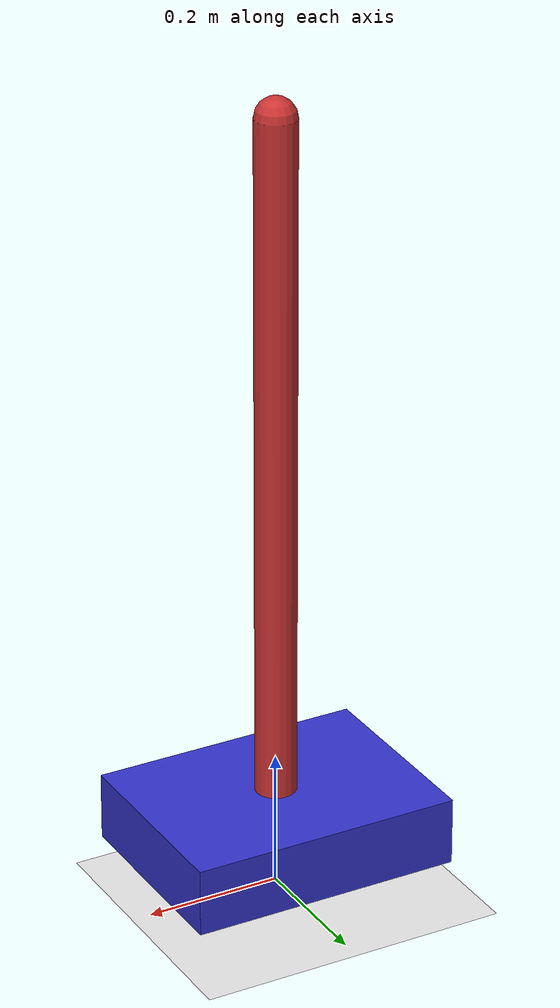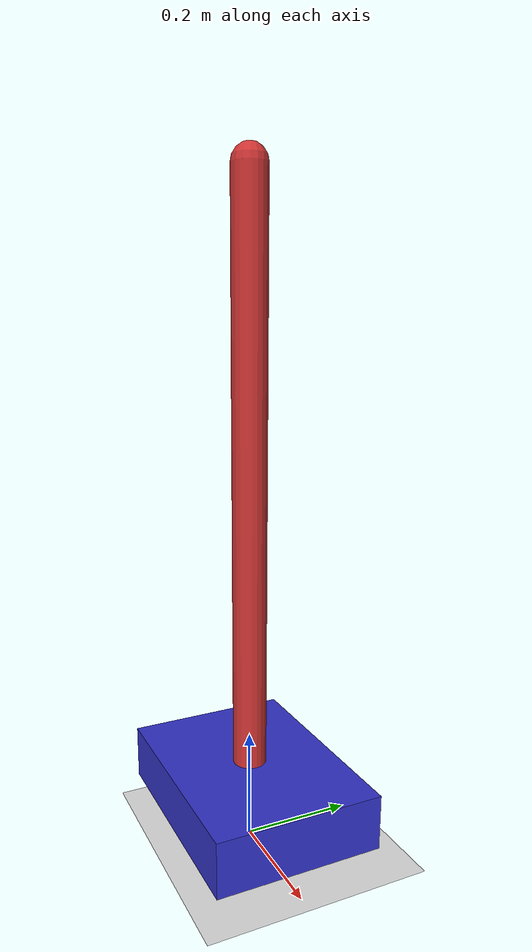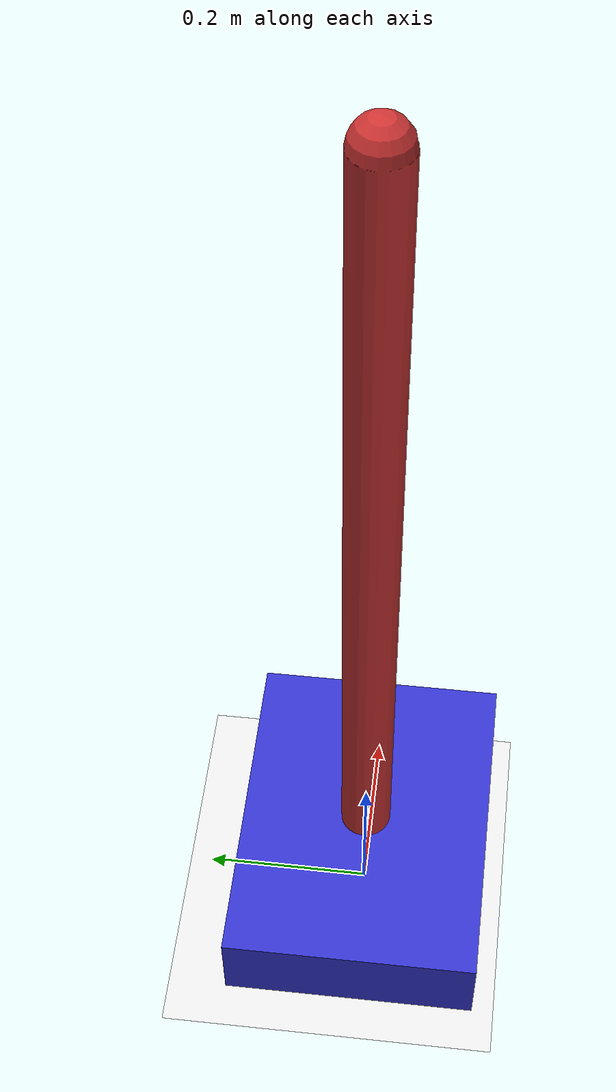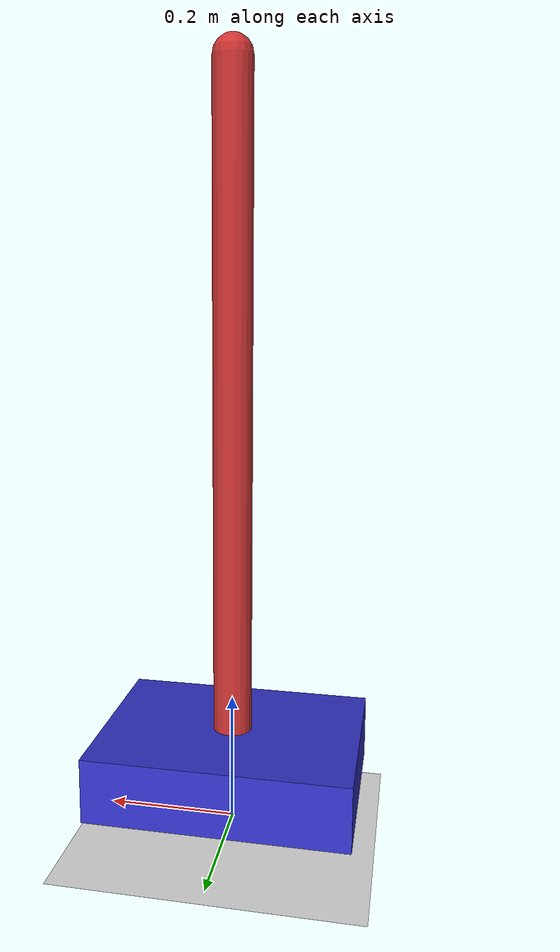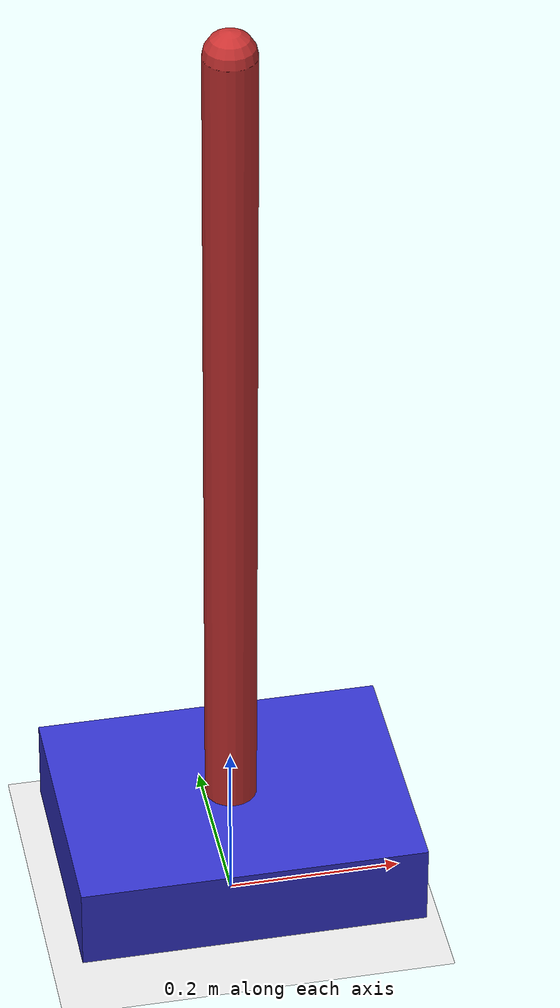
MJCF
<mujoco model="cart_pole">
    <option timestep="0.001" gravity="0 0 -9.81"/>

    <worldbody>
        <!-- Ground -->
        <geom type="plane" size="10 10 0.1" rgba="0.9 0.9 0.9 1"/>

        <!-- Cart -->
        <body name="cart" pos="0 0 0.1">
            <joint name="cart_slide"
                   type="slide"
                   axis="0 1 0"
                   damping="1.0"/>

            <geom type="box"
                  size="0.2 0.15 0.05"
                  mass="5.0"
                  rgba="0.2 0.2 0.8 1"/>

            <!-- Pole -->
            <body name="pole" pos="0 0 0.05">
                <joint name="pole_hinge"
                       type="hinge"
                       axis="1 0 0"
                       damping="0.05"/>

                <geom type="capsule"
                      fromto="0 0 0  0 0 1.0"
                      size="0.03"
                      mass="1.0"
                      rgba="0.8 0.2 0.2 1"/>
            </body>
        </body>
    </worldbody>

    <actuator>
        <motor joint="cart_slide"
               ctrlrange="-50 50"/>
    </actuator>
</mujoco>
